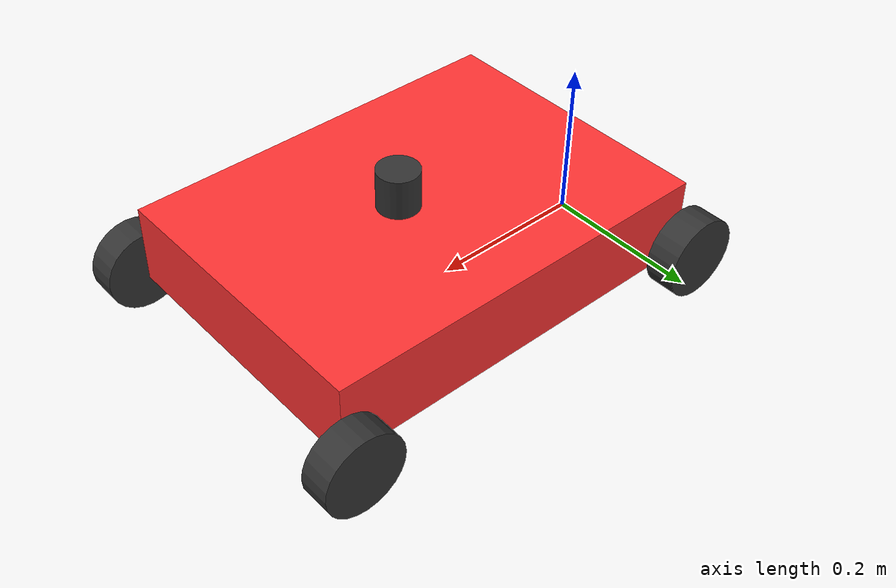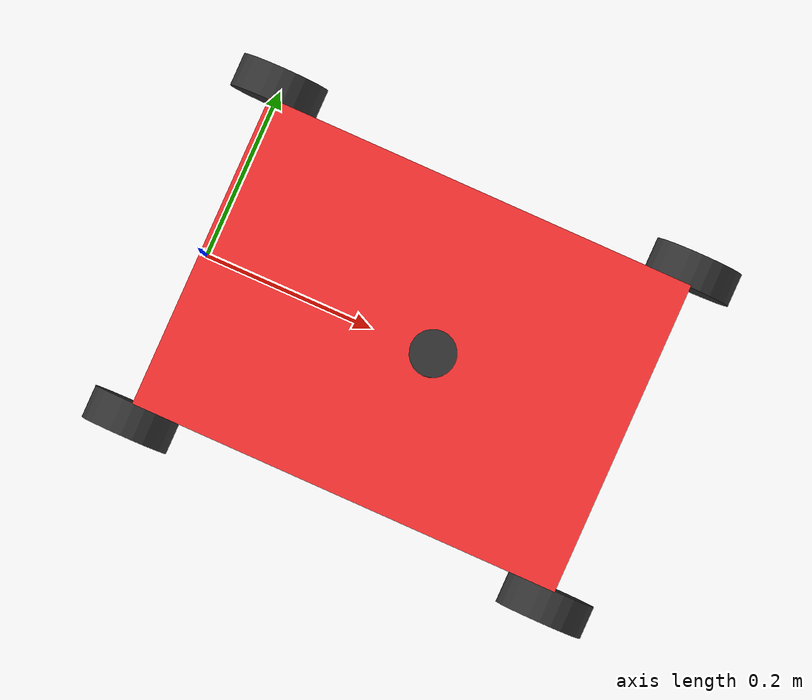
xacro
<?xml version="1.0"?>

<!-- A simple model of the racecar for rviz -->
<robot xmlns:xacro="http://www.ros.org/wiki/xacro" name="$det_racecar">

  <xacro:property name="wheelbase" value="0.5002" />
  <xacro:property name="width" value="0.3632" />
  <xacro:property name="height" value="0.1" />
  <xacro:property name="ground_offset" value="0.04" />
  <xacro:property name="wheel_radius" value="0.0508" />
  <xacro:property name="wheel_length" value="0.0381" />
  <xacro:property name="laser_distance_from_base_link" value="0.275" />
  <xacro:property name="laser_height" value="0.05" />
  <xacro:property name="laser_radius" value="0.026" />

  <material name="black">
    <color rgba="0.2 0.2 0.2 1."/>
  </material>

  <material name="red">
    <color rgba="1 0.2 0.2 1."/>
  </material>

  <!-- Define a prefix property -->
  <xacro:property name="prefix" value="det_racecar_" />

  <link name="${prefix}base_link">
    <visual>
      <origin xyz="${wheelbase/2} 0 ${ground_offset+height/2}"/>
      <geometry>
        <box size="${wheelbase} ${width} ${height}"/>
      </geometry>
      <material name="red"/>
    </visual>
  </link>

  <joint name="base_to_laser_model" type="fixed">
    <parent link="${prefix}base_link"/>
    <child link="${prefix}laser_model"/>
    <origin xyz="${laser_distance_from_base_link} 0 ${ground_offset+height+(laser_height/2)}"/>
  </joint>

  <link name="${prefix}laser_model">
    <visual>
      <geometry>
        <cylinder radius="${laser_radius}" length="${laser_height}"/>
      </geometry>
      <material name="black"/>
    </visual>
  </link>

  <joint name="base_to_back_left_wheel" type="fixed">
    <parent link="${prefix}base_link"/>
    <child link="${prefix}back_left_wheel"/>
    <origin xyz="0 ${(wheel_length+width)/2} ${wheel_radius}"/>
  </joint>

  <link name="${prefix}back_left_wheel">
    <visual>
      <geometry>
        <cylinder radius="${wheel_radius}" length="${wheel_length}"/>
      </geometry>
      <material name="black"/>
      <origin rpy="${pi/2} 0 0"/>
    </visual>
  </link>

<joint name="base_to_back_right_wheel" type="fixed">
    <parent link="${prefix}base_link"/>
    <child link="${prefix}back_right_wheel"/>
    <origin xyz="0 ${-(wheel_length+width)/2} ${wheel_radius}"/>
  </joint>

  <link name="${prefix}back_right_wheel">
    <visual>
      <geometry>
        <cylinder radius="${wheel_radius}" length="${wheel_length}"/>
      </geometry>
      <material name="black"/>
      <origin rpy="${pi/2} 0 0"/>
    </visual>
  </link>

  <joint name="base_to_front_left_hinge" type="fixed">
    <parent link="${prefix}base_link"/>
    <child link="${prefix}front_left_hinge"/>
    <origin xyz="${wheelbase} ${(wheel_length+width)/2} ${wheel_radius}"/>
  </joint>

  <link name="${prefix}front_left_hinge"/>

  <joint name="front_left_hinge_to_wheel" type="continuous">
    <parent link="${prefix}front_left_hinge"/>
    <child link="${prefix}front_left_wheel"/>
  </joint>

  <link name="${prefix}front_left_wheel">
    <visual>
      <geometry>
        <cylinder radius="${wheel_radius}" length="${wheel_length}"/>
      </geometry>
      <material name="black"/>
      <origin rpy="${pi/2} 0 0"/>
    </visual>
  </link>

  <joint name="base_to_front_right_hinge" type="fixed">
    <parent link="${prefix}base_link"/>
    <child link="${prefix}front_right_hinge"/>
    <origin xyz="${wheelbase} ${-(wheel_length+width)/2} ${wheel_radius}"/>
  </joint>

  <link name="${prefix}front_right_hinge"/>

  <joint name="front_right_hinge_to_wheel" type="continuous">
    <parent link="${prefix}front_right_hinge"/>
    <child link="${prefix}front_right_wheel"/>
  </joint>

  <link name="${prefix}front_right_wheel">
    <visual>
      <geometry>
        <cylinder radius="${wheel_radius}" length="${wheel_length}"/>
      </geometry>
      <material name="black"/>
      <origin rpy="${pi/2} 0 0"/>
    </visual>
  </link>

</robot>
